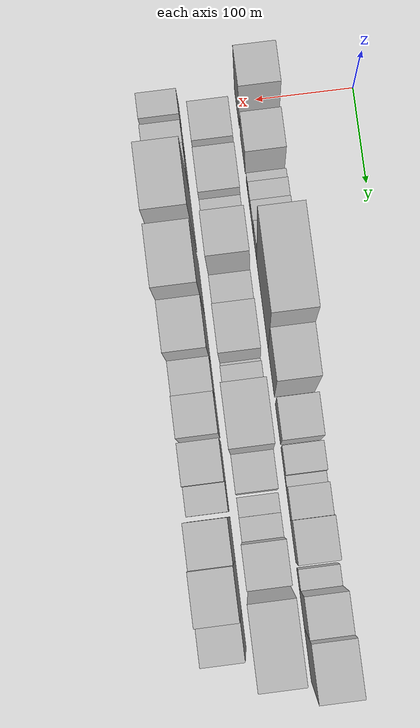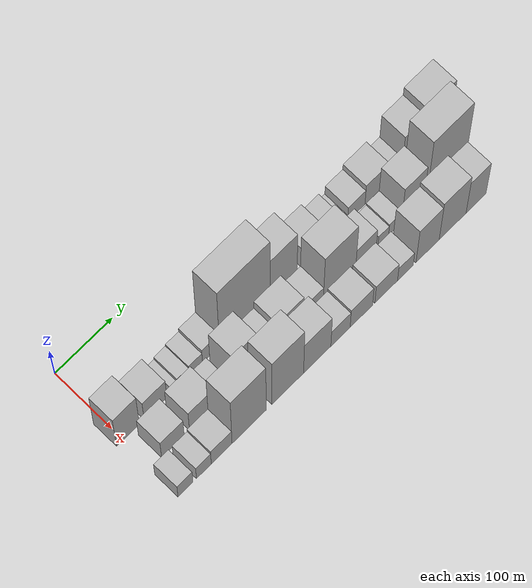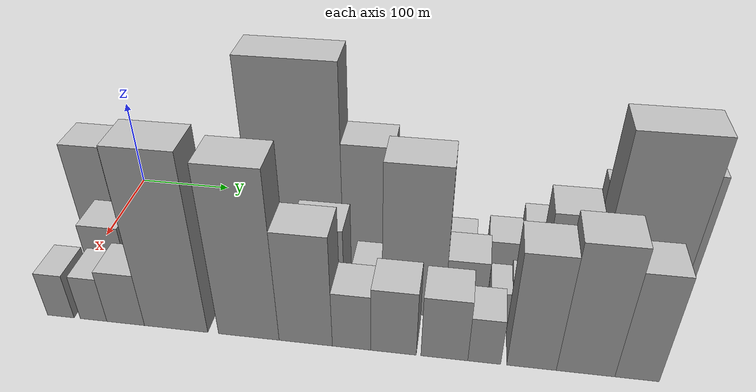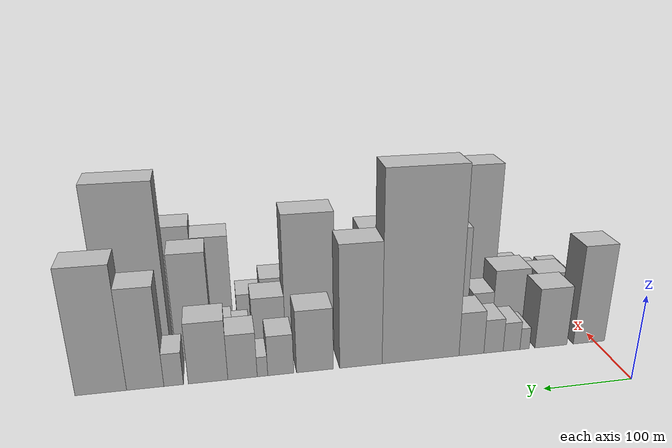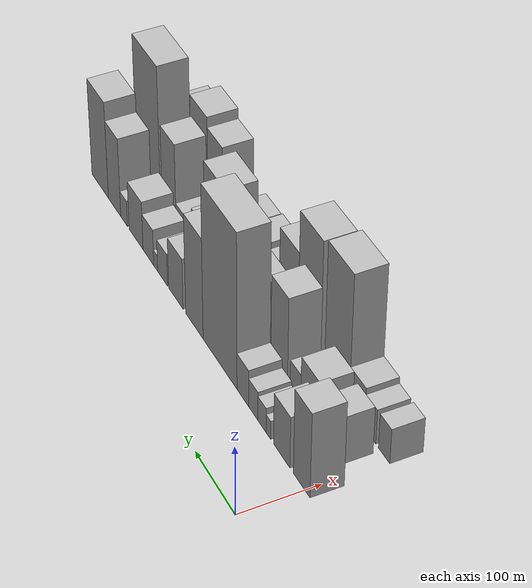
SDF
<sdf version="1.6">
 <world name="default">
  <model name="building_15">
   <static>1</static>
   <pose>100.0000 7.9234 0 0.000000 0.000000 0.000000</pose>
   <link name="link">
    <pose>0 0 61.50 0 0 0</pose>
    <collision name="collision"><geometry><box><size>40.0000 39.2212 123.0000</size></box></geometry></collision>
    <visual name="visual">
     <cast_shadows>0</cast_shadows>
     <geometry><box><size>40.0000 39.2212 123.0000</size></box></geometry>
     <material>
      <script>
       <uri>model://HANNAS_wall/materials/scripts</uri>
       <uri>model://HANNAS_wall/materials/textures</uri>
       <name>vrc/HANNAS_wall</name>
      </script>
     </material>
    </visual>
   </link>
  </model>
  <model name="building_16">
   <static>1</static>
   <pose>100.0000 55.2420 0 0.000000 0.000000 0.000000</pose>
   <link name="link">
    <pose>0 0 37.50 0 0 0</pose>
    <collision name="collision"><geometry><box><size>40.0000 39.4160 75.0000</size></box></geometry></collision>
    <visual name="visual">
     <cast_shadows>0</cast_shadows>
     <geometry><box><size>40.0000 39.4160 75.0000</size></box></geometry>
     <material>
      <script>
       <uri>model://HANNAS_wall/materials/scripts</uri>
       <uri>model://HANNAS_wall/materials/textures</uri>
       <name>vrc/HANNAS_wall</name>
      </script>
     </material>
    </visual>
   </link>
  </model>
  <model name="building_17">
   <static>1</static>
   <pose>100.0000 87.6871 0 0.000000 0.000000 0.000000</pose>
   <link name="link">
    <pose>0 0 13.50 0 0 0</pose>
    <collision name="collision"><geometry><box><size>40.0000 11.4742 27.0000</size></box></geometry></collision>
    <visual name="visual">
     <cast_shadows>0</cast_shadows>
     <geometry><box><size>40.0000 11.4742 27.0000</size></box></geometry>
     <material>
      <script>
       <uri>model://HANNAS_wall/materials/scripts</uri>
       <uri>model://HANNAS_wall/materials/textures</uri>
       <name>vrc/HANNAS_wall</name>
      </script>
     </material>
    </visual>
   </link>
  </model>
  <model name="building_18">
   <static>1</static>
   <pose>100.0000 103.5341 0 0.000000 0.000000 0.000000</pose>
   <link name="link">
    <pose>0 0 18.00 0 0 0</pose>
    <collision name="collision"><geometry><box><size>40.0000 20.2200 36.0000</size></box></geometry></collision>
    <visual name="visual">
     <cast_shadows>0</cast_shadows>
     <geometry><box><size>40.0000 20.2200 36.0000</size></box></geometry>
     <material>
      <script>
       <uri>model://HANNAS_wall/materials/scripts</uri>
       <uri>model://HANNAS_wall/materials/textures</uri>
       <name>vrc/HANNAS_wall</name>
      </script>
     </material>
    </visual>
   </link>
  </model>
  <model name="building_19">
   <static>1</static>
   <pose>100.0000 125.2188 0 0.000000 0.000000 0.000000</pose>
   <link name="link">
    <pose>0 0 21.00 0 0 0</pose>
    <collision name="collision"><geometry><box><size>40.0000 23.1493 42.0000</size></box></geometry></collision>
    <visual name="visual">
     <cast_shadows>0</cast_shadows>
     <geometry><box><size>40.0000 23.1493 42.0000</size></box></geometry>
     <material>
      <script>
       <uri>model://HANNAS_wall/materials/scripts</uri>
       <uri>model://HANNAS_wall/materials/textures</uri>
       <name>vrc/HANNAS_wall</name>
      </script>
     </material>
    </visual>
   </link>
  </model>
  <model name="building_20">
   <static>1</static>
   <pose>100.0000 151.5495 0 0.000000 0.000000 0.000000</pose>
   <link name="link">
    <pose>0 0 27.00 0 0 0</pose>
    <collision name="collision"><geometry><box><size>40.0000 29.5121 54.0000</size></box></geometry></collision>
    <visual name="visual">
     <cast_shadows>0</cast_shadows>
     <geometry><box><size>40.0000 29.5121 54.0000</size></box></geometry>
     <material>
      <script>
       <uri>model://HANNAS_wall/materials/scripts</uri>
       <uri>model://HANNAS_wall/materials/textures</uri>
       <name>vrc/HANNAS_wall</name>
      </script>
     </material>
    </visual>
   </link>
  </model>
  <model name="building_21">
   <static>1</static>
   <pose>100.0000 210.8032 0 0.000000 0.000000 0.000000</pose>
   <link name="link">
    <pose>0 0 112.50 0 0 0</pose>
    <collision name="collision"><geometry><box><size>40.0000 88.9954 225.0000</size></box></geometry></collision>
    <visual name="visual">
     <cast_shadows>0</cast_shadows>
     <geometry><box><size>40.0000 88.9954 225.0000</size></box></geometry>
     <material>
      <script>
       <uri>model://HANNAS_wall/materials/scripts</uri>
       <uri>model://HANNAS_wall/materials/textures</uri>
       <name>vrc/HANNAS_wall</name>
      </script>
     </material>
    </visual>
   </link>
  </model>
  <model name="building_22">
   <static>1</static>
   <pose>100.0000 279.1438 0 0.000000 0.000000 0.000000</pose>
   <link name="link">
    <pose>0 0 73.50 0 0 0</pose>
    <collision name="collision"><geometry><box><size>40.0000 47.6858 147.0000</size></box></geometry></collision>
    <visual name="visual">
     <cast_shadows>0</cast_shadows>
     <geometry><box><size>40.0000 47.6858 147.0000</size></box></geometry>
     <material>
      <script>
       <uri>model://HANNAS_wall/materials/scripts</uri>
       <uri>model://HANNAS_wall/materials/textures</uri>
       <name>vrc/HANNAS_wall</name>
      </script>
     </material>
    </visual>
   </link>
  </model>
  <model name="building_23">
   <static>1</static>
   <pose>100.0000 330.2353 0 0.000000 0.000000 0.000000</pose>
   <link name="link">
    <pose>0 0 37.50 0 0 0</pose>
    <collision name="collision"><geometry><box><size>40.0000 40.4971 75.0000</size></box></geometry></collision>
    <visual name="visual">
     <cast_shadows>0</cast_shadows>
     <geometry><box><size>40.0000 40.4971 75.0000</size></box></geometry>
     <material>
      <script>
       <uri>model://HANNAS_wall/materials/scripts</uri>
       <uri>model://HANNAS_wall/materials/textures</uri>
       <name>vrc/HANNAS_wall</name>
      </script>
     </material>
    </visual>
   </link>
  </model>
  <model name="building_24">
   <static>1</static>
   <pose>100.0000 367.5910 0 0.000000 0.000000 0.000000</pose>
   <link name="link">
    <pose>0 0 24.00 0 0 0</pose>
    <collision name="collision"><geometry><box><size>40.0000 28.2144 48.0000</size></box></geometry></collision>
    <visual name="visual">
     <cast_shadows>0</cast_shadows>
     <geometry><box><size>40.0000 28.2144 48.0000</size></box></geometry>
     <material>
      <script>
       <uri>model://HANNAS_wall/materials/scripts</uri>
       <uri>model://HANNAS_wall/materials/textures</uri>
       <name>vrc/HANNAS_wall</name>
      </script>
     </material>
    </visual>
   </link>
  </model>
  <model name="building_25">
   <static>1</static>
   <pose>100.0000 387.3323 0 0.000000 0.000000 0.000000</pose>
   <link name="link">
    <pose>0 0 12.00 0 0 0</pose>
    <collision name="collision"><geometry><box><size>40.0000 11.2683 24.0000</size></box></geometry></collision>
    <visual name="visual">
     <cast_shadows>0</cast_shadows>
     <geometry><box><size>40.0000 11.2683 24.0000</size></box></geometry>
     <material>
      <script>
       <uri>model://HANNAS_wall/materials/scripts</uri>
       <uri>model://HANNAS_wall/materials/textures</uri>
       <name>vrc/HANNAS_wall</name>
      </script>
     </material>
    </visual>
   </link>
  </model>
  <model name="building_26">
   <static>1</static>
   <pose>100.0000 408.5365 0 0.000000 0.000000 0.000000</pose>
   <link name="link">
    <pose>0 0 27.00 0 0 0</pose>
    <collision name="collision"><geometry><box><size>40.0000 31.1400 54.0000</size></box></geometry></collision>
    <visual name="visual">
     <cast_shadows>0</cast_shadows>
     <geometry><box><size>40.0000 31.1400 54.0000</size></box></geometry>
     <material>
      <script>
       <uri>model://HANNAS_wall/materials/scripts</uri>
       <uri>model://HANNAS_wall/materials/textures</uri>
       <name>vrc/HANNAS_wall</name>
      </script>
     </material>
    </visual>
   </link>
  </model>
  <model name="building_27">
   <static>1</static>
   <pose>100.0000 444.8234 0 0.000000 0.000000 0.000000</pose>
   <link name="link">
    <pose>0 0 36.00 0 0 0</pose>
    <collision name="collision"><geometry><box><size>40.0000 41.4338 72.0000</size></box></geometry></collision>
    <visual name="visual">
     <cast_shadows>0</cast_shadows>
     <geometry><box><size>40.0000 41.4338 72.0000</size></box></geometry>
     <material>
      <script>
       <uri>model://HANNAS_wall/materials/scripts</uri>
       <uri>model://HANNAS_wall/materials/textures</uri>
       <name>vrc/HANNAS_wall</name>
      </script>
     </material>
    </visual>
   </link>
  </model>
  <model name="building_28">
   <static>1</static>
   <pose>100.0000 480.5963 0 0.000000 0.000000 0.000000</pose>
   <link name="link">
    <pose>0 0 19.50 0 0 0</pose>
    <collision name="collision"><geometry><box><size>40.0000 20.1121 39.0000</size></box></geometry></collision>
    <visual name="visual">
     <cast_shadows>0</cast_shadows>
     <geometry><box><size>40.0000 20.1121 39.0000</size></box></geometry>
     <material>
      <script>
       <uri>model://HANNAS_wall/materials/scripts</uri>
       <uri>model://HANNAS_wall/materials/textures</uri>
       <name>vrc/HANNAS_wall</name>
      </script>
     </material>
    </visual>
   </link>
  </model>
  <model name="building_29">
   <static>1</static>
   <pose>100.0000 509.6059 0 0.000000 0.000000 0.000000</pose>
   <link name="link">
    <pose>0 0 58.50 0 0 0</pose>
    <collision name="collision"><geometry><box><size>40.0000 37.9071 117.0000</size></box></geometry></collision>
    <visual name="visual">
     <cast_shadows>0</cast_shadows>
     <geometry><box><size>40.0000 37.9071 117.0000</size></box></geometry>
     <material>
      <script>
       <uri>model://HANNAS_wall/materials/scripts</uri>
       <uri>model://HANNAS_wall/materials/textures</uri>
       <name>vrc/HANNAS_wall</name>
      </script>
     </material>
    </visual>
   </link>
  </model>
  <model name="building_30">
   <static>1</static>
   <pose>100.0000 554.2953 0 0.000000 0.000000 0.000000</pose>
   <link name="link">
    <pose>0 0 72.00 0 0 0</pose>
    <collision name="collision"><geometry><box><size>40.0000 51.4716 144.0000</size></box></geometry></collision>
    <visual name="visual">
     <cast_shadows>0</cast_shadows>
     <geometry><box><size>40.0000 51.4716 144.0000</size></box></geometry>
     <material>
      <script>
       <uri>model://HANNAS_wall/materials/scripts</uri>
       <uri>model://HANNAS_wall/materials/textures</uri>
       <name>vrc/HANNAS_wall</name>
      </script>
     </material>
    </visual>
   </link>
  </model>
  <model name="building_45">
   <static>1</static>
   <pose>149.0000 36.3781 0 0.000000 0.000000 0.000000</pose>
   <link name="link">
    <pose>0 0 34.50 0 0 0</pose>
    <collision name="collision"><geometry><box><size>40.0000 39.0934 69.0000</size></box></geometry></collision>
    <visual name="visual">
     <cast_shadows>0</cast_shadows>
     <geometry><box><size>40.0000 39.0934 69.0000</size></box></geometry>
     <material>
      <script>
       <uri>model://HANNAS_wall/materials/scripts</uri>
       <uri>model://HANNAS_wall/materials/textures</uri>
       <name>vrc/HANNAS_wall</name>
      </script>
     </material>
    </visual>
   </link>
  </model>
  <model name="building_46">
   <static>1</static>
   <pose>149.0000 87.0052 0 0.000000 0.000000 0.000000</pose>
   <link name="link">
    <pose>0 0 39.00 0 0 0</pose>
    <collision name="collision"><geometry><box><size>40.0000 44.1608 78.0000</size></box></geometry></collision>
    <visual name="visual">
     <cast_shadows>0</cast_shadows>
     <geometry><box><size>40.0000 44.1608 78.0000</size></box></geometry>
     <material>
      <script>
       <uri>model://HANNAS_wall/materials/scripts</uri>
       <uri>model://HANNAS_wall/materials/textures</uri>
       <name>vrc/HANNAS_wall</name>
      </script>
     </material>
    </visual>
   </link>
  </model>
  <model name="building_47">
   <static>1</static>
   <pose>149.0000 122.1016 0 0.000000 0.000000 0.000000</pose>
   <link name="link">
    <pose>0 0 25.50 0 0 0</pose>
    <collision name="collision"><geometry><box><size>40.0000 26.0319 51.0000</size></box></geometry></collision>
    <visual name="visual">
     <cast_shadows>0</cast_shadows>
     <geometry><box><size>40.0000 26.0319 51.0000</size></box></geometry>
     <material>
      <script>
       <uri>model://HANNAS_wall/materials/scripts</uri>
       <uri>model://HANNAS_wall/materials/textures</uri>
       <name>vrc/HANNAS_wall</name>
      </script>
     </material>
    </visual>
   </link>
  </model>
  <model name="building_48">
   <static>1</static>
   <pose>149.0000 161.9994 0 0.000000 0.000000 0.000000</pose>
   <link name="link">
    <pose>0 0 67.50 0 0 0</pose>
    <collision name="collision"><geometry><box><size>40.0000 41.7636 135.0000</size></box></geometry></collision>
    <visual name="visual">
     <cast_shadows>0</cast_shadows>
     <geometry><box><size>40.0000 41.7636 135.0000</size></box></geometry>
     <material>
      <script>
       <uri>model://HANNAS_wall/materials/scripts</uri>
       <uri>model://HANNAS_wall/materials/textures</uri>
       <name>vrc/HANNAS_wall</name>
      </script>
     </material>
    </visual>
   </link>
  </model>
  <model name="building_49">
   <static>1</static>
   <pose>149.0000 201.9454 0 0.000000 0.000000 0.000000</pose>
   <link name="link">
    <pose>0 0 31.50 0 0 0</pose>
    <collision name="collision"><geometry><box><size>40.0000 32.1285 63.0000</size></box></geometry></collision>
    <visual name="visual">
     <cast_shadows>0</cast_shadows>
     <geometry><box><size>40.0000 32.1285 63.0000</size></box></geometry>
     <material>
      <script>
       <uri>model://HANNAS_wall/materials/scripts</uri>
       <uri>model://HANNAS_wall/materials/textures</uri>
       <name>vrc/HANNAS_wall</name>
      </script>
     </material>
    </visual>
   </link>
  </model>
  <model name="building_50">
   <static>1</static>
   <pose>149.0000 241.2826 0 0.000000 0.000000 0.000000</pose>
   <link name="link">
    <pose>0 0 45.00 0 0 0</pose>
    <collision name="collision"><geometry><box><size>40.0000 46.5459 90.0000</size></box></geometry></collision>
    <visual name="visual">
     <cast_shadows>0</cast_shadows>
     <geometry><box><size>40.0000 46.5459 90.0000</size></box></geometry>
     <material>
      <script>
       <uri>model://HANNAS_wall/materials/scripts</uri>
       <uri>model://HANNAS_wall/materials/textures</uri>
       <name>vrc/HANNAS_wall</name>
      </script>
     </material>
    </visual>
   </link>
  </model>
  <model name="building_51">
   <static>1</static>
   <pose>149.0000 267.8641 0 0.000000 0.000000 0.000000</pose>
   <link name="link">
    <pose>0 0 7.50 0 0 0</pose>
    <collision name="collision"><geometry><box><size>40.0000 6.6171 15.0000</size></box></geometry></collision>
    <visual name="visual">
     <cast_shadows>0</cast_shadows>
     <geometry><box><size>40.0000 6.6171 15.0000</size></box></geometry>
     <material>
      <script>
       <uri>model://HANNAS_wall/materials/scripts</uri>
       <uri>model://HANNAS_wall/materials/textures</uri>
       <name>vrc/HANNAS_wall</name>
      </script>
     </material>
    </visual>
   </link>
  </model>
  <model name="building_52">
   <static>1</static>
   <pose>149.0000 285.3457 0 0.000000 0.000000 0.000000</pose>
   <link name="link">
    <pose>0 0 24.00 0 0 0</pose>
    <collision name="collision"><geometry><box><size>40.0000 28.3461 48.0000</size></box></geometry></collision>
    <visual name="visual">
     <cast_shadows>0</cast_shadows>
     <geometry><box><size>40.0000 28.3461 48.0000</size></box></geometry>
     <material>
      <script>
       <uri>model://HANNAS_wall/materials/scripts</uri>
       <uri>model://HANNAS_wall/materials/textures</uri>
       <name>vrc/HANNAS_wall</name>
      </script>
     </material>
    </visual>
   </link>
  </model>
  <model name="building_53">
   <static>1</static>
   <pose>149.0000 328.2533 0 0.000000 0.000000 0.000000</pose>
   <link name="link">
    <pose>0 0 82.50 0 0 0</pose>
    <collision name="collision"><geometry><box><size>40.0000 57.4690 165.0000</size></box></geometry></collision>
    <visual name="visual">
     <cast_shadows>0</cast_shadows>
     <geometry><box><size>40.0000 57.4690 165.0000</size></box></geometry>
     <material>
      <script>
       <uri>model://HANNAS_wall/materials/scripts</uri>
       <uri>model://HANNAS_wall/materials/textures</uri>
       <name>vrc/HANNAS_wall</name>
      </script>
     </material>
    </visual>
   </link>
  </model>
  <model name="building_54">
   <static>1</static>
   <pose>149.0000 375.3203 0 0.000000 0.000000 0.000000</pose>
   <link name="link">
    <pose>0 0 34.50 0 0 0</pose>
    <collision name="collision"><geometry><box><size>40.0000 36.6648 69.0000</size></box></geometry></collision>
    <visual name="visual">
     <cast_shadows>0</cast_shadows>
     <geometry><box><size>40.0000 36.6648 69.0000</size></box></geometry>
     <material>
      <script>
       <uri>model://HANNAS_wall/materials/scripts</uri>
       <uri>model://HANNAS_wall/materials/textures</uri>
       <name>vrc/HANNAS_wall</name>
      </script>
     </material>
    </visual>
   </link>
  </model>
  <model name="building_55">
   <static>1</static>
   <pose>149.0000 406.1363 0 0.000000 0.000000 0.000000</pose>
   <link name="link">
    <pose>0 0 18.00 0 0 0</pose>
    <collision name="collision"><geometry><box><size>40.0000 18.9673 36.0000</size></box></geometry></collision>
    <visual name="visual">
     <cast_shadows>0</cast_shadows>
     <geometry><box><size>40.0000 18.9673 36.0000</size></box></geometry>
     <material>
      <script>
       <uri>model://HANNAS_wall/materials/scripts</uri>
       <uri>model://HANNAS_wall/materials/textures</uri>
       <name>vrc/HANNAS_wall</name>
      </script>
     </material>
    </visual>
   </link>
  </model>
  <model name="building_56">
   <static>1</static>
   <pose>149.0000 427.1485 0 0.000000 0.000000 0.000000</pose>
   <link name="link">
    <pose>0 0 21.00 0 0 0</pose>
    <collision name="collision"><geometry><box><size>40.0000 23.0571 42.0000</size></box></geometry></collision>
    <visual name="visual">
     <cast_shadows>0</cast_shadows>
     <geometry><box><size>40.0000 23.0571 42.0000</size></box></geometry>
     <material>
      <script>
       <uri>model://HANNAS_wall/materials/scripts</uri>
       <uri>model://HANNAS_wall/materials/textures</uri>
       <name>vrc/HANNAS_wall</name>
      </script>
     </material>
    </visual>
   </link>
  </model>
  <model name="building_57">
   <static>1</static>
   <pose>149.0000 458.8039 0 0.000000 0.000000 0.000000</pose>
   <link name="link">
    <pose>0 0 64.50 0 0 0</pose>
    <collision name="collision"><geometry><box><size>40.0000 40.2536 129.0000</size></box></geometry></collision>
    <visual name="visual">
     <cast_shadows>0</cast_shadows>
     <geometry><box><size>40.0000 40.2536 129.0000</size></box></geometry>
     <material>
      <script>
       <uri>model://HANNAS_wall/materials/scripts</uri>
       <uri>model://HANNAS_wall/materials/textures</uri>
       <name>vrc/HANNAS_wall</name>
      </script>
     </material>
    </visual>
   </link>
  </model>
  <model name="building_58">
   <static>1</static>
   <pose>149.0000 519.1750 0 0.000000 0.000000 0.000000</pose>
   <link name="link">
    <pose>0 0 105.00 0 0 0</pose>
    <collision name="collision"><geometry><box><size>40.0000 70.4886 210.0000</size></box></geometry></collision>
    <visual name="visual">
     <cast_shadows>0</cast_shadows>
     <geometry><box><size>40.0000 70.4886 210.0000</size></box></geometry>
     <material>
      <script>
       <uri>model://HANNAS_wall/materials/scripts</uri>
       <uri>model://HANNAS_wall/materials/textures</uri>
       <name>vrc/HANNAS_wall</name>
      </script>
     </material>
    </visual>
   </link>
  </model>
  <model name="building_73">
   <static>1</static>
   <pose>198.0000 8.8946 0 0.000000 0.000000 0.000000</pose>
   <link name="link">
    <pose>0 0 25.50 0 0 0</pose>
    <collision name="collision"><geometry><box><size>40.0000 25.7601 51.0000</size></box></geometry></collision>
    <visual name="visual">
     <cast_shadows>0</cast_shadows>
     <geometry><box><size>40.0000 25.7601 51.0000</size></box></geometry>
     <material>
      <script>
       <uri>model://HANNAS_wall/materials/scripts</uri>
       <uri>model://HANNAS_wall/materials/textures</uri>
       <name>vrc/HANNAS_wall</name>
      </script>
     </material>
    </visual>
   </link>
  </model>
  <model name="building_74">
   <static>1</static>
   <pose>198.0000 40.6071 0 0.000000 0.000000 0.000000</pose>
   <link name="link">
    <pose>0 0 25.50 0 0 0</pose>
    <collision name="collision"><geometry><box><size>40.0000 25.6648 51.0000</size></box></geometry></collision>
    <visual name="visual">
     <cast_shadows>0</cast_shadows>
     <geometry><box><size>40.0000 25.6648 51.0000</size></box></geometry>
     <material>
      <script>
       <uri>model://HANNAS_wall/materials/scripts</uri>
       <uri>model://HANNAS_wall/materials/textures</uri>
       <name>vrc/HANNAS_wall</name>
      </script>
     </material>
    </visual>
   </link>
  </model>
  <model name="building_75">
   <static>1</static>
   <pose>198.0000 71.3726 0 0.000000 0.000000 0.000000</pose>
   <link name="link">
    <pose>0 0 30.00 0 0 0</pose>
    <collision name="collision"><geometry><box><size>40.0000 35.8663 60.0000</size></box></geometry></collision>
    <visual name="visual">
     <cast_shadows>0</cast_shadows>
     <geometry><box><size>40.0000 35.8663 60.0000</size></box></geometry>
     <material>
      <script>
       <uri>model://HANNAS_wall/materials/scripts</uri>
       <uri>model://HANNAS_wall/materials/textures</uri>
       <name>vrc/HANNAS_wall</name>
      </script>
     </material>
    </visual>
   </link>
  </model>
  <model name="building_76">
   <static>1</static>
   <pose>198.0000 119.0167 0 0.000000 0.000000 0.000000</pose>
   <link name="link">
    <pose>0 0 96.00 0 0 0</pose>
    <collision name="collision"><geometry><box><size>40.0000 59.4218 192.0000</size></box></geometry></collision>
    <visual name="visual">
     <cast_shadows>0</cast_shadows>
     <geometry><box><size>40.0000 59.4218 192.0000</size></box></geometry>
     <material>
      <script>
       <uri>model://HANNAS_wall/materials/scripts</uri>
       <uri>model://HANNAS_wall/materials/textures</uri>
       <name>vrc/HANNAS_wall</name>
      </script>
     </material>
    </visual>
   </link>
  </model>
  <model name="building_77">
   <static>1</static>
   <pose>198.0000 186.5029 0 0.000000 0.000000 0.000000</pose>
   <link name="link">
    <pose>0 0 91.50 0 0 0</pose>
    <collision name="collision"><geometry><box><size>40.0000 55.5507 183.0000</size></box></geometry></collision>
    <visual name="visual">
     <cast_shadows>0</cast_shadows>
     <geometry><box><size>40.0000 55.5507 183.0000</size></box></geometry>
     <material>
      <script>
       <uri>model://HANNAS_wall/materials/scripts</uri>
       <uri>model://HANNAS_wall/materials/textures</uri>
       <name>vrc/HANNAS_wall</name>
      </script>
     </material>
    </visual>
   </link>
  </model>
  <model name="building_78">
   <static>1</static>
   <pose>198.0000 238.2641 0 0.000000 0.000000 0.000000</pose>
   <link name="link">
    <pose>0 0 61.50 0 0 0</pose>
    <collision name="collision"><geometry><box><size>40.0000 47.9717 123.0000</size></box></geometry></collision>
    <visual name="visual">
     <cast_shadows>0</cast_shadows>
     <geometry><box><size>40.0000 47.9717 123.0000</size></box></geometry>
     <material>
      <script>
       <uri>model://HANNAS_wall/materials/scripts</uri>
       <uri>model://HANNAS_wall/materials/textures</uri>
       <name>vrc/HANNAS_wall</name>
      </script>
     </material>
    </visual>
   </link>
  </model>
  <model name="building_79">
   <static>1</static>
   <pose>198.0000 279.3065 0 0.000000 0.000000 0.000000</pose>
   <link name="link">
    <pose>0 0 31.50 0 0 0</pose>
    <collision name="collision"><geometry><box><size>40.0000 34.1132 63.0000</size></box></geometry></collision>
    <visual name="visual">
     <cast_shadows>0</cast_shadows>
     <geometry><box><size>40.0000 34.1132 63.0000</size></box></geometry>
     <material>
      <script>
       <uri>model://HANNAS_wall/materials/scripts</uri>
       <uri>model://HANNAS_wall/materials/textures</uri>
       <name>vrc/HANNAS_wall</name>
      </script>
     </material>
    </visual>
   </link>
  </model>
  <model name="building_80">
   <static>1</static>
   <pose>198.0000 316.2609 0 0.000000 0.000000 0.000000</pose>
   <link name="link">
    <pose>0 0 36.00 0 0 0</pose>
    <collision name="collision"><geometry><box><size>40.0000 39.7955 72.0000</size></box></geometry></collision>
    <visual name="visual">
     <cast_shadows>0</cast_shadows>
     <geometry><box><size>40.0000 39.7955 72.0000</size></box></geometry>
     <material>
      <script>
       <uri>model://HANNAS_wall/materials/scripts</uri>
       <uri>model://HANNAS_wall/materials/textures</uri>
       <name>vrc/HANNAS_wall</name>
      </script>
     </material>
    </visual>
   </link>
  </model>
  <model name="building_81">
   <static>1</static>
   <pose>198.0000 360.4050 0 0.000000 0.000000 0.000000</pose>
   <link name="link">
    <pose>0 0 34.50 0 0 0</pose>
    <collision name="collision"><geometry><box><size>40.0000 40.4927 69.0000</size></box></geometry></collision>
    <visual name="visual">
     <cast_shadows>0</cast_shadows>
     <geometry><box><size>40.0000 40.4927 69.0000</size></box></geometry>
     <material>
      <script>
       <uri>model://HANNAS_wall/materials/scripts</uri>
       <uri>model://HANNAS_wall/materials/textures</uri>
       <name>vrc/HANNAS_wall</name>
      </script>
     </material>
    </visual>
   </link>
  </model>
  <model name="building_82">
   <static>1</static>
   <pose>198.0000 394.6594 0 0.000000 0.000000 0.000000</pose>
   <link name="link">
    <pose>0 0 25.50 0 0 0</pose>
    <collision name="collision"><geometry><box><size>40.0000 28.0161 51.0000</size></box></geometry></collision>
    <visual name="visual">
     <cast_shadows>0</cast_shadows>
     <geometry><box><size>40.0000 28.0161 51.0000</size></box></geometry>
     <material>
      <script>
       <uri>model://HANNAS_wall/materials/scripts</uri>
       <uri>model://HANNAS_wall/materials/textures</uri>
       <name>vrc/HANNAS_wall</name>
      </script>
     </material>
    </visual>
   </link>
  </model>
  <model name="building_83">
   <static>1</static>
   <pose>198.0000 434.5161 0 0.000000 0.000000 0.000000</pose>
   <link name="link">
    <pose>0 0 63.00 0 0 0</pose>
    <collision name="collision"><geometry><box><size>40.0000 41.6975 126.0000</size></box></geometry></collision>
    <visual name="visual">
     <cast_shadows>0</cast_shadows>
     <geometry><box><size>40.0000 41.6975 126.0000</size></box></geometry>
     <material>
      <script>
       <uri>model://HANNAS_wall/materials/scripts</uri>
       <uri>model://HANNAS_wall/materials/textures</uri>
       <name>vrc/HANNAS_wall</name>
      </script>
     </material>
    </visual>
   </link>
  </model>
  <model name="building_84">
   <static>1</static>
   <pose>198.0000 479.5735 0 0.000000 0.000000 0.000000</pose>
   <link name="link">
    <pose>0 0 70.50 0 0 0</pose>
    <collision name="collision"><geometry><box><size>40.0000 48.4173 141.0000</size></box></geometry></collision>
    <visual name="visual">
     <cast_shadows>0</cast_shadows>
     <geometry><box><size>40.0000 48.4173 141.0000</size></box></geometry>
     <material>
      <script>
       <uri>model://HANNAS_wall/materials/scripts</uri>
       <uri>model://HANNAS_wall/materials/textures</uri>
       <name>vrc/HANNAS_wall</name>
      </script>
     </material>
    </visual>
   </link>
  </model>
  <model name="building_85">
   <static>1</static>
   <pose>198.0000 521.8536 0 0.000000 0.000000 0.000000</pose>
   <link name="link">
    <pose>0 0 58.50 0 0 0</pose>
    <collision name="collision"><geometry><box><size>40.0000 36.1428 117.0000</size></box></geometry></collision>
    <visual name="visual">
     <cast_shadows>0</cast_shadows>
     <geometry><box><size>40.0000 36.1428 117.0000</size></box></geometry>
     <material>
      <script>
       <uri>model://HANNAS_wall/materials/scripts</uri>
       <uri>model://HANNAS_wall/materials/textures</uri>
       <name>vrc/HANNAS_wall</name>
      </script>
     </material>
    </visual>
   </link>
  </model>
 </world>
</sdf>
